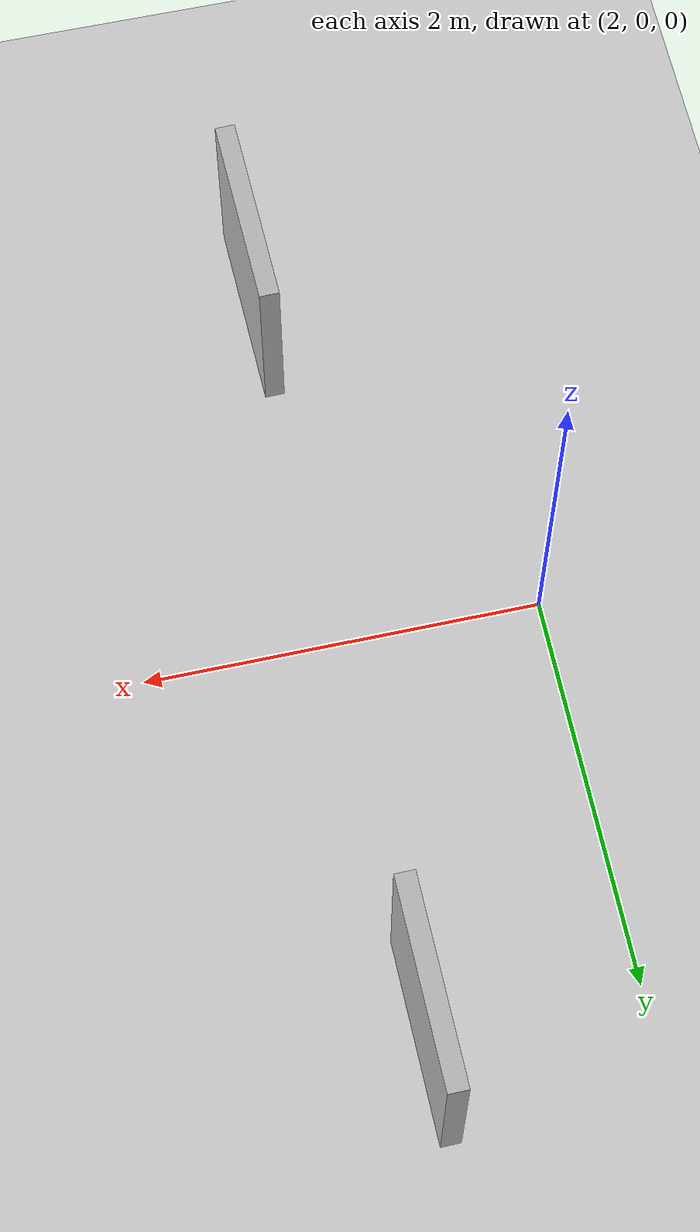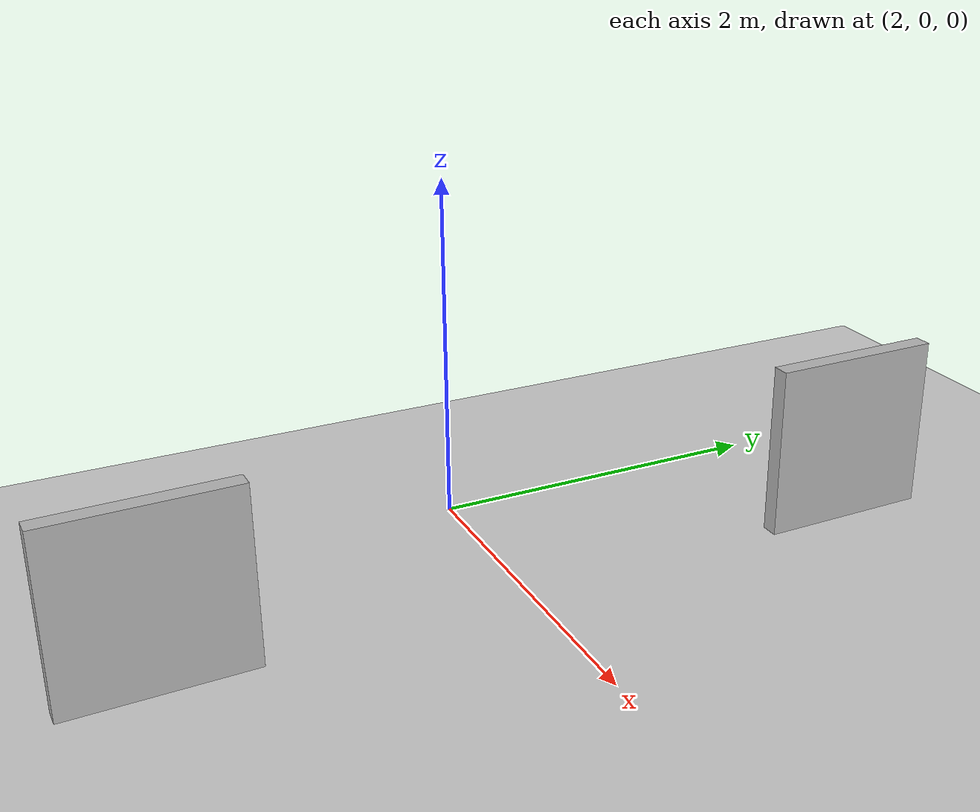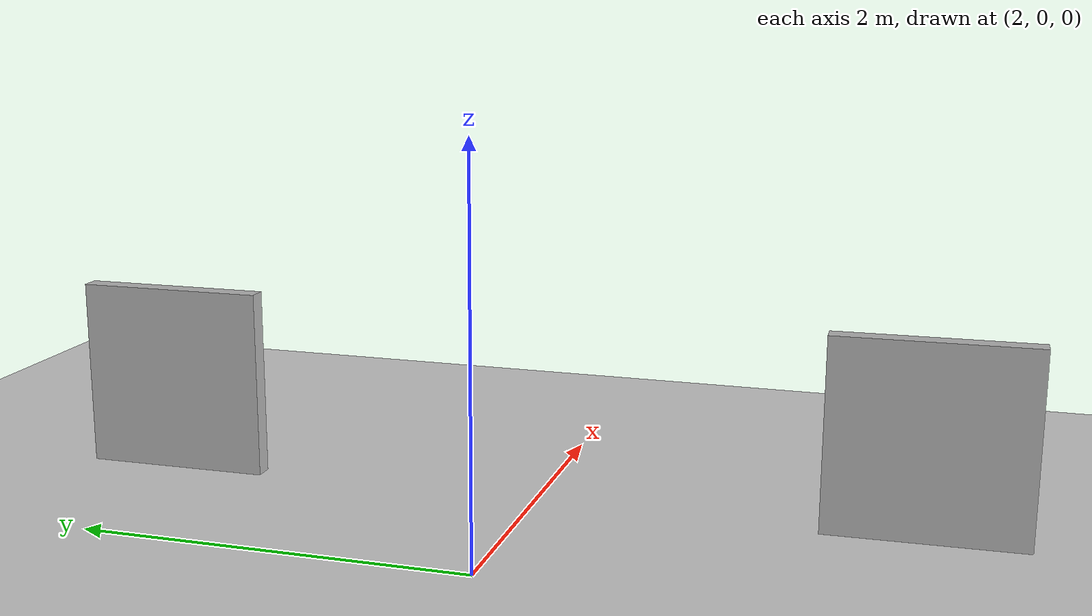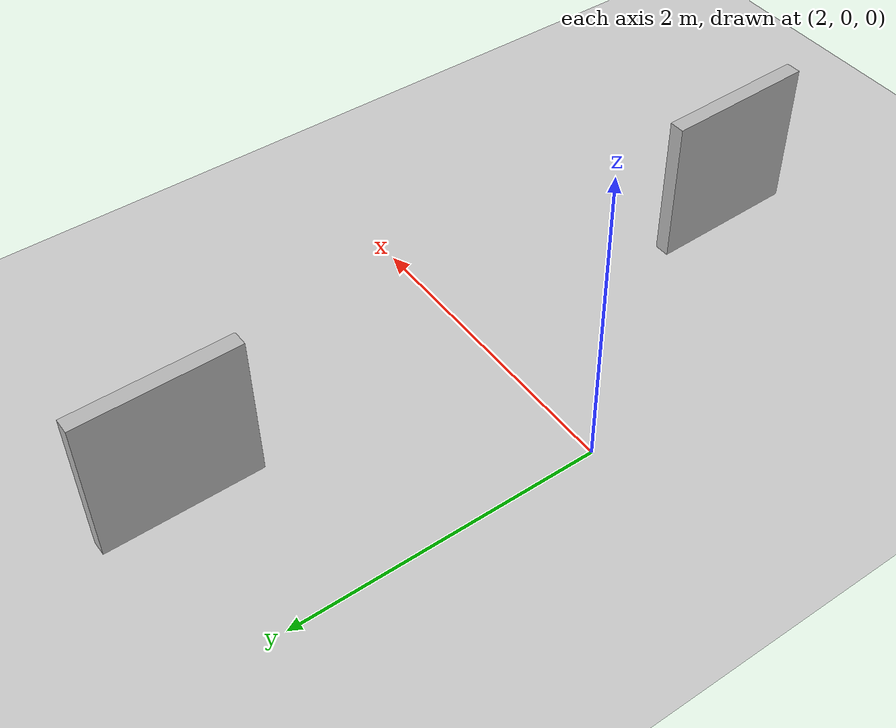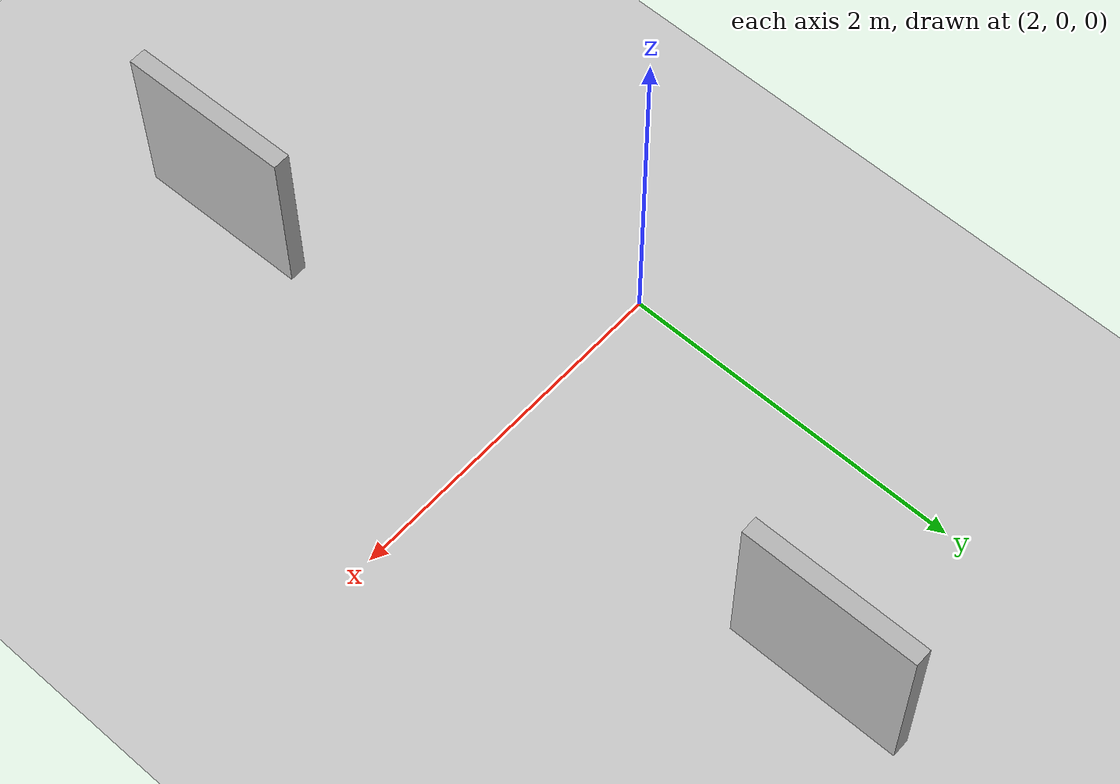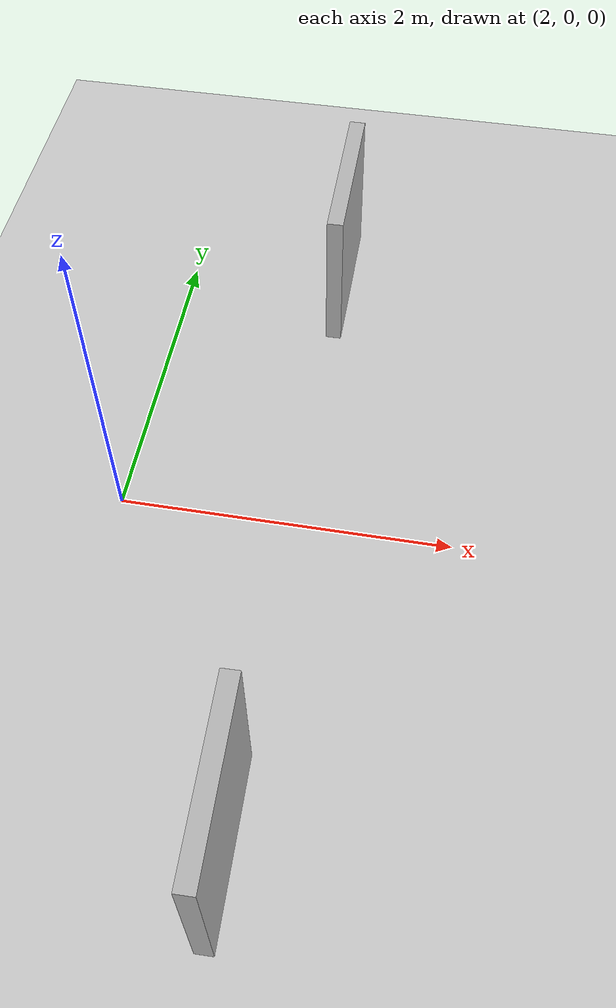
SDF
<sdf version="1.7">
 <world name="default">
  <light name="sun" type="directional">
   <pose>0 0 10 0 -0 0</pose>
   <diffuse>0.8 0.8 0.8 1</diffuse>
   <specular>0.2 0.2 0.2 1</specular>
   <attenuation>
    <range>1000</range>
    <constant>0.9</constant>
    <linear>0.01</linear>
    <quadratic>0.001</quadratic>
   </attenuation>
   <direction>-0.5 0.1 -0.9</direction>
   <spot><inner_angle>0</inner_angle><outer_angle>0</outer_angle><falloff>0</falloff></spot>
  </light>
  <model name="ground_plane">
   <static>1</static>
   <link name="link">
    <collision name="collision">
     <geometry><plane><normal>0 0 1</normal><size>100 100</size></plane></geometry>
     <surface>
      <contact><collide_bitmask>65535</collide_bitmask></contact>
      <friction><ode><mu>100</mu><mu2>50</mu2></ode></friction>
     </surface>
    </collision>
    <visual name="visual">
     <cast_shadows>0</cast_shadows>
     <geometry><plane><normal>0 0 1</normal><size>100 100</size></plane></geometry>
     <material>
      <script><uri>file://media/materials/scripts/gazebo.material</uri><name>Gazebo/Grey</name></script>
     </material>
    </visual>
   </link>
  </model>
  <gravity>0 0 -9.8</gravity>
  <magnetic_field>6e-06 2.3e-05 -4.2e-05</magnetic_field>
  <atmosphere type="adiabatic"/>
  <physics type="ode">
   <max_step_size>0.001</max_step_size>
   <real_time_factor>1</real_time_factor>
   <real_time_update_rate>1000</real_time_update_rate>
  </physics>
  <scene><ambient>0.4 0.4 0.4 1</ambient><background>0.7 0.7 0.7 1</background><shadows>1</shadows></scene>
  <spherical_coordinates>
   <surface_model>EARTH_WGS84</surface_model>
   <latitude_deg>0</latitude_deg>
   <longitude_deg>0</longitude_deg>
   <elevation>0</elevation>
   <heading_deg>0</heading_deg>
  </spherical_coordinates>
  <model name="QR_Wall_2">
   <static>1</static>
   <link name="link">
    <pose>0 0 1.4 0 -0 0</pose>
    <collision name="collision"><geometry><box><size>1 0.1 1</size></box></geometry></collision>
    <visual name="visual">
     <cast_shadows>0</cast_shadows>
     <geometry><box><size>1 0.1 1</size></box></geometry>
     <material>
      <script>
       <uri>model://QR_Wall/materials/scripts</uri>
       <uri>model://QR_Wall/materials/textures</uri>
       <name>vrc/QR_Wall</name>
      </script>
     </material>
    </visual>
   </link>
   <pose>3.05803 -1.94635 -0.907362 0 -0 1.59491</pose>
  </model>
  <model name="QR_Walla">
   <static>1</static>
   <link name="link">
    <pose>0 0 1.4 0 -0 0</pose>
    <collision name="collision"><geometry><box><size>1 0.1 1</size></box></geometry></collision>
    <visual name="visual">
     <cast_shadows>0</cast_shadows>
     <geometry><box><size>1 0.1 1</size></box></geometry>
     <material>
      <script>
       <uri>model://QR_Walla/materials/scripts</uri>
       <uri>model://QR_Walla/materials/textures</uri>
       <name>vrc/QR_Walla</name>
      </script>
     </material>
    </visual>
   </link>
   <pose>3.04495 2.04228 -0.907584 0 0 -1.56171</pose>
  </model>
 </world>
</sdf>
